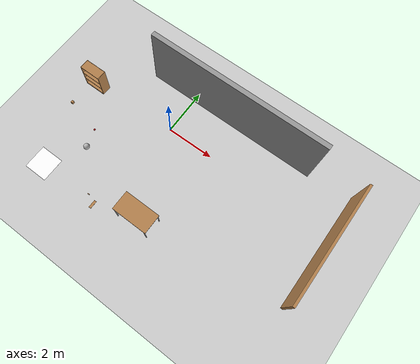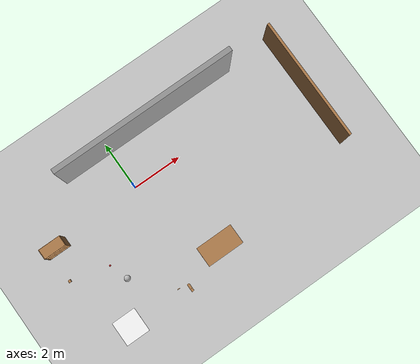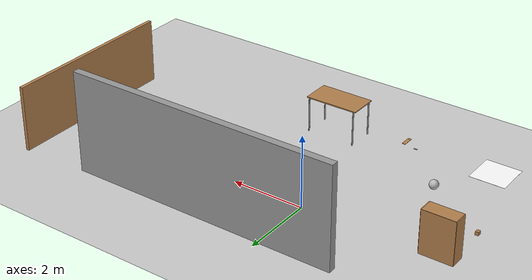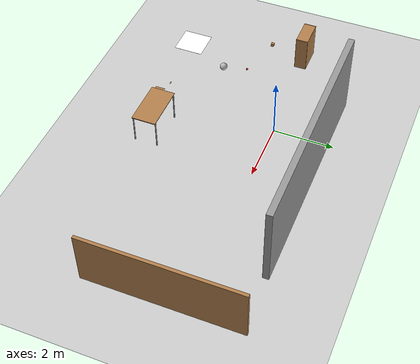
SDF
<sdf version="1.7">
 <world name="default">
  <light name="sun" type="directional">
   <pose>0 0 10 0 -0 0</pose>
   <diffuse>0.8 0.8 0.8 1</diffuse>
   <specular>0.2 0.2 0.2 1</specular>
   <attenuation>
    <range>1000</range>
    <constant>0.9</constant>
    <linear>0.01</linear>
    <quadratic>0.001</quadratic>
   </attenuation>
   <direction>-0.5 0.1 -0.9</direction>
   <spot><inner_angle>0</inner_angle><outer_angle>0</outer_angle><falloff>0</falloff></spot>
  </light>
  <model name="ground_plane">
   <static>1</static>
   <link name="link">
    <collision name="collision">
     <geometry><plane><normal>0 0 1</normal><size>100 100</size></plane></geometry>
     <surface>
      <contact><collide_bitmask>65535</collide_bitmask></contact>
      <friction><ode><mu>100</mu><mu2>50</mu2></ode></friction>
     </surface>
    </collision>
    <visual name="visual">
     <cast_shadows>0</cast_shadows>
     <geometry><plane><normal>0 0 1</normal><size>100 100</size></plane></geometry>
     <material>
      <script><uri>file://media/materials/scripts/gazebo.material</uri><name>Gazebo/Grey</name></script>
     </material>
    </visual>
   </link>
  </model>
  <gravity>0 0 -9.8</gravity>
  <magnetic_field>6e-06 2.3e-05 -4.2e-05</magnetic_field>
  <atmosphere type="adiabatic"/>
  <physics type="ode">
   <max_step_size>0.001</max_step_size>
   <real_time_factor>1</real_time_factor>
   <real_time_update_rate>1000</real_time_update_rate>
  </physics>
  <scene><ambient>0.4 0.4 0.4 1</ambient><background>0.7 0.7 0.7 1</background><shadows>1</shadows></scene>
  <audio><device>default</device></audio>
  <spherical_coordinates>
   <surface_model>EARTH_WGS84</surface_model>
   <latitude_deg>0</latitude_deg>
   <longitude_deg>0</longitude_deg>
   <elevation>0</elevation>
   <heading_deg>0</heading_deg>
  </spherical_coordinates>
  <model name="bookshelf">
   <static>1</static>
   <link name="link">
    <inertial><mass>1</mass></inertial>
    <collision name="back">
     <pose>0 0.005 0.6 0 -0 0</pose>
     <geometry><box><size>0.9 0.01 1.2</size></box></geometry>
    </collision>
    <visual name="visual1">
     <pose>0 0.005 0.6 0 -0 0</pose>
     <geometry><box><size>0.9 0.01 1.2</size></box></geometry>
     <material>
      <script><uri>file://media/materials/scripts/gazebo.material</uri><name>Gazebo/Wood</name></script>
     </material>
    </visual>
    <collision name="left_side">
     <pose>0.45 -0.195 0.6 0 -0 0</pose>
     <geometry><box><size>0.02 0.4 1.2</size></box></geometry>
    </collision>
    <visual name="visual2">
     <pose>0.45 -0.195 0.6 0 -0 0</pose>
     <geometry><box><size>0.02 0.4 1.2</size></box></geometry>
     <material>
      <script><uri>file://media/materials/scripts/gazebo.material</uri><name>Gazebo/Wood</name></script>
     </material>
    </visual>
    <collision name="right_side">
     <pose>-0.45 -0.195 0.6 0 -0 0</pose>
     <geometry><box><size>0.02 0.4 1.2</size></box></geometry>
    </collision>
    <visual name="visual3">
     <pose>-0.45 -0.195 0.6 0 -0 0</pose>
     <geometry><box><size>0.02 0.4 1.2</size></box></geometry>
     <material>
      <script><uri>file://media/materials/scripts/gazebo.material</uri><name>Gazebo/Wood</name></script>
     </material>
    </visual>
    <collision name="bottom">
     <pose>0 -0.195 0.03 0 -0 0</pose>
     <geometry><box><size>0.88 0.4 0.06</size></box></geometry>
    </collision>
    <visual name="visual4">
     <pose>0 -0.195 0.03 0 -0 0</pose>
     <geometry><box><size>0.88 0.4 0.06</size></box></geometry>
     <material>
      <script><uri>file://media/materials/scripts/gazebo.material</uri><name>Gazebo/Wood</name></script>
     </material>
    </visual>
    <collision name="top">
     <pose>0 -0.195 1.19 0 -0 0</pose>
     <geometry><box><size>0.88 0.4 0.02</size></box></geometry>
    </collision>
    <visual name="visual5">
     <pose>0 -0.195 1.19 0 -0 0</pose>
     <geometry><box><size>0.88 0.4 0.02</size></box></geometry>
     <material>
      <script><uri>file://media/materials/scripts/gazebo.material</uri><name>Gazebo/Wood</name></script>
     </material>
    </visual>
    <collision name="low_shelf">
     <pose>0 -0.195 0.43 0 -0 0</pose>
     <geometry><box><size>0.88 0.4 0.02</size></box></geometry>
    </collision>
    <visual name="visual6">
     <pose>0 -0.195 0.43 0 -0 0</pose>
     <geometry><box><size>0.88 0.4 0.02</size></box></geometry>
     <material>
      <script><uri>file://media/materials/scripts/gazebo.material</uri><name>Gazebo/Wood</name></script>
     </material>
    </visual>
    <collision name="high_shelf">
     <pose>0 -0.195 0.8 0 -0 0</pose>
     <geometry><box><size>0.88 0.4 0.02</size></box></geometry>
    </collision>
    <visual name="visual7">
     <pose>0 -0.195 0.8 0 -0 0</pose>
     <geometry><box><size>0.88 0.4 0.02</size></box></geometry>
     <material>
      <script><uri>file://media/materials/scripts/gazebo.material</uri><name>Gazebo/Wood</name></script>
     </material>
    </visual>
   </link>
   <pose>-3.67092 0.003597 0 0 -0 0</pose>
  </model>
  <model name="cricket_ball">
   <link name="link">
    <pose>0 0 0.0375 0 -0 0</pose>
    <inertial>
     <mass>0.1467</mass>
     <inertia>
      <ixx>8.25187e-05</ixx>
      <ixy>0</ixy>
      <ixz>0</ixz>
      <iyy>8.25187e-05</iyy>
      <iyz>0</iyz>
      <izz>8.25187e-05</izz>
     </inertia>
    </inertial>
    <collision name="collision">
     <geometry><sphere><radius>0.0375</radius></sphere></geometry>
     <surface>
      <contact>
       <poissons_ratio>0.347</poissons_ratio>
       <elastic_modulus>8.8e+09</elastic_modulus>
       <ode><kp>100000</kp><kd>100</kd><max_vel>100</max_vel><min_depth>0.001</min_depth></ode>
      </contact>
      <friction>
       <torsional>
        <coefficient>1</coefficient>
        <use_patch_radius>0</use_patch_radius>
        <surface_radius>0.01</surface_radius>
       </torsional>
      </friction>
     </surface>
    </collision>
    <visual name="visual">
     <geometry><sphere><radius>0.0375</radius></sphere></geometry>
     <material>
      <script><uri>file://media/materials/scripts/gazebo.material</uri><name>Gazebo/Red</name></script>
     </material>
    </visual>
    <velocity_decay><linear>0</linear><angular>0.005</angular></velocity_decay>
   </link>
   <pose>-2.43366 -1.8471 -0.001014 0 -0 0</pose>
  </model>
  <model name="frc2016_ball">
   <pose>-2.17325 -2.60747 0.127 0 -0 0</pose>
   <link name="link">
    <inertial>
     <mass>0.213</mass>
     <inertia>
      <ixx>0.00322667</ixx>
      <ixy>0</ixy>
      <ixz>0</ixz>
      <iyy>0.00322667</iyy>
      <iyz>0</iyz>
      <izz>0.00322667</izz>
     </inertia>
    </inertial>
    <visual name="visual"><geometry><sphere><radius>0.127</radius></sphere></geometry></visual>
    <collision name="collision">
     <geometry><sphere><radius>0.127</radius></sphere></geometry>
     <surface>
      <bounce><restitution_coefficient>0.15937</restitution_coefficient><threshold>0</threshold></bounce>
      <contact><ode><max_vel>100</max_vel><min_depth>0.001</min_depth></ode></contact>
     </surface>
    </collision>
   </link>
  </model>
  <model name="grey_wall">
   <static>1</static>
   <link name="link">
    <pose>0 0 1.4 0 -0 0</pose>
    <collision name="collision"><geometry><box><size>7.5 0.2 2.8</size></box></geometry></collision>
    <visual name="visual">
     <cast_shadows>0</cast_shadows>
     <geometry><box><size>7.5 0.2 2.8</size></box></geometry>
     <material>
      <script>
       <uri>model://grey_wall/materials/scripts</uri>
       <uri>model://grey_wall/materials/textures</uri>
       <name>vrc/grey_wall</name>
      </script>
     </material>
    </visual>
   </link>
   <pose>1.74238 1.71792 0 0 -0 0</pose>
  </model>
  <model name="table">
   <static>1</static>
   <link name="link">
    <collision name="surface">
     <pose>0 0 1 0 -0 0</pose>
     <geometry><box><size>1.5 0.8 0.03</size></box></geometry>
     <surface><friction><ode><mu>0.6</mu><mu2>0.6</mu2></ode></friction></surface>
    </collision>
    <visual name="visual1">
     <pose>0 0 1 0 -0 0</pose>
     <geometry><box><size>1.5 0.8 0.03</size></box></geometry>
     <material>
      <script><uri>file://media/materials/scripts/gazebo.material</uri><name>Gazebo/Wood</name></script>
     </material>
    </visual>
    <collision name="front_left_leg">
     <pose>0.68 0.38 0.5 0 -0 0</pose>
     <geometry><cylinder><radius>0.02</radius><length>1</length></cylinder></geometry>
    </collision>
    <visual name="front_left_leg">
     <pose>0.68 0.38 0.5 0 -0 0</pose>
     <geometry><cylinder><radius>0.02</radius><length>1</length></cylinder></geometry>
     <material>
      <script><uri>file://media/materials/scripts/gazebo.material</uri><name>Gazebo/Grey</name></script>
     </material>
    </visual>
    <collision name="front_right_leg">
     <pose>0.68 -0.38 0.5 0 -0 0</pose>
     <geometry><cylinder><radius>0.02</radius><length>1</length></cylinder></geometry>
    </collision>
    <visual name="front_right_leg">
     <pose>0.68 -0.38 0.5 0 -0 0</pose>
     <geometry><cylinder><radius>0.02</radius><length>1</length></cylinder></geometry>
     <material>
      <script><uri>file://media/materials/scripts/gazebo.material</uri><name>Gazebo/Grey</name></script>
     </material>
    </visual>
    <collision name="back_right_leg">
     <pose>-0.68 -0.38 0.5 0 -0 0</pose>
     <geometry><cylinder><radius>0.02</radius><length>1</length></cylinder></geometry>
    </collision>
    <visual name="back_right_leg">
     <pose>-0.68 -0.38 0.5 0 -0 0</pose>
     <geometry><cylinder><radius>0.02</radius><length>1</length></cylinder></geometry>
     <material>
      <script><uri>file://media/materials/scripts/gazebo.material</uri><name>Gazebo/Grey</name></script>
     </material>
    </visual>
    <collision name="back_left_leg">
     <pose>-0.68 0.38 0.5 0 -0 0</pose>
     <geometry><cylinder><radius>0.02</radius><length>1</length></cylinder></geometry>
    </collision>
    <visual name="back_left_leg">
     <pose>-0.68 0.38 0.5 0 -0 0</pose>
     <geometry><cylinder><radius>0.02</radius><length>1</length></cylinder></geometry>
     <material>
      <script><uri>file://media/materials/scripts/gazebo.material</uri><name>Gazebo/Grey</name></script>
     </material>
    </visual>
   </link>
   <pose>1.28554 -3.61302 0 0 -0 0</pose>
  </model>
  <model name="wood_cube_10cm">
   <link name="link">
    <pose>0 0 0.05 0 -0 0</pose>
    <inertial>
     <mass>0.5167</mass>
     <inertia>
      <ixx>0.000861167</ixx>
      <ixy>0</ixy>
      <ixz>0</ixz>
      <iyy>0.000861167</iyy>
      <iyz>0</iyz>
      <izz>0.000861167</izz>
     </inertia>
    </inertial>
    <collision name="collision">
     <geometry><box><size>0.1 0.1 0.1</size></box></geometry>
     <surface>
      <contact>
       <poissons_ratio>0.347</poissons_ratio>
       <elastic_modulus>8.8e+09</elastic_modulus>
       <ode><kp>100000</kp><kd>100</kd><max_vel>100</max_vel><min_depth>0.001</min_depth></ode>
      </contact>
      <friction>
       <torsional>
        <coefficient>1</coefficient>
        <use_patch_radius>0</use_patch_radius>
        <surface_radius>0.01</surface_radius>
       </torsional>
      </friction>
     </surface>
    </collision>
    <visual name="visual">
     <geometry><box><size>0.1 0.1 0.1</size></box></geometry>
     <material>
      <script><uri>file://media/materials/scripts/gazebo.material</uri><name>Gazebo/Wood</name></script>
     </material>
    </visual>
   </link>
   <pose>-3.97938 -1.45766 -0.001013 0 -0 0</pose>
  </model>
  <model name="wood_block_10_2_1cm">
   <link name="link">
    <pose>0 0 0.005 0 -0 0</pose>
    <inertial>
     <mass>0.0125</mass>
     <inertia>
      <ixx>7.55208e-07</ixx>
      <ixy>0</ixy>
      <ixz>0</ixz>
      <iyy>1.05208e-05</iyy>
      <iyz>0</iyz>
      <izz>1.10677e-05</izz>
     </inertia>
    </inertial>
    <collision name="collision">
     <geometry><box><size>0.1 0.025 0.01</size></box></geometry>
     <surface>
      <contact>
       <poissons_ratio>0.347</poissons_ratio>
       <elastic_modulus>8.8e+09</elastic_modulus>
       <ode><kp>100000</kp><kd>1</kd><max_vel>1</max_vel><min_depth>0.001</min_depth></ode>
      </contact>
      <friction>
       <torsional>
        <coefficient>1</coefficient>
        <use_patch_radius>0</use_patch_radius>
        <surface_radius>0.05</surface_radius>
       </torsional>
      </friction>
     </surface>
    </collision>
    <visual name="visual">
     <geometry><box><size>0.1 0.025 0.01</size></box></geometry>
     <material>
      <script><uri>file://media/materials/scripts/gazebo.material</uri><name>Gazebo/Wood</name></script>
     </material>
    </visual>
   </link>
   <pose>-0.849513 -4.02965 -0.000901 2.4e-05 -6e-06 0</pose>
  </model>
  <model name="wooden_board">
   <link name="base">
    <pose>0 0 0.00523 0 -0 0</pose>
    <inertial>
     <mass>0.2765</mass>
     <inertia>
      <ixx>0.0025148</ixx>
      <ixy>0</ixy>
      <ixz>0</ixz>
      <iyy>0.00024037</iyy>
      <iyz>0</iyz>
      <izz>0.00275013</izz>
     </inertia>
    </inertial>
    <collision name="collision">
     <geometry><box><size>0.1016 0.3302 0.01046</size></box></geometry>
     <surface>
      <contact>
       <poissons_ratio>0.347</poissons_ratio>
       <elastic_modulus>8.8e+09</elastic_modulus>
       <ode><kp>100000</kp><kd>100</kd><max_vel>100</max_vel><min_depth>0.001</min_depth></ode>
      </contact>
      <friction>
       <torsional>
        <coefficient>1</coefficient>
        <use_patch_radius>0</use_patch_radius>
        <surface_radius>0.01</surface_radius>
       </torsional>
      </friction>
     </surface>
    </collision>
    <visual name="visual">
     <geometry><box><size>0.1016 0.3302 0.01046</size></box></geometry>
     <material>
      <script><uri>file://media/materials/scripts/gazebo.material</uri><name>Gazebo/Wood</name></script>
     </material>
    </visual>
    <visual name="tee_nut_1">
     <pose>0 -0.116 0 0 -0 0</pose>
     <geometry><cylinder><radius>0.00635</radius><length>0.0105646</length></cylinder></geometry>
     <material>
      <script><uri>file://media/materials/scripts/gazebo.material</uri><name>Gazebo/Grey</name></script>
     </material>
    </visual>
    <visual name="tee_nut_2">
     <pose>0 -0.038 0 0 -0 0</pose>
     <geometry><cylinder><radius>0.00635</radius><length>0.0105646</length></cylinder></geometry>
     <material>
      <script><uri>file://media/materials/scripts/gazebo.material</uri><name>Gazebo/Grey</name></script>
     </material>
    </visual>
    <visual name="tee_nut_3">
     <pose>0 0.038 0 0 -0 0</pose>
     <geometry><cylinder><radius>0.00635</radius><length>0.0105646</length></cylinder></geometry>
     <material>
      <script><uri>file://media/materials/scripts/gazebo.material</uri><name>Gazebo/Grey</name></script>
     </material>
    </visual>
    <visual name="tee_nut_4">
     <pose>0 0.116 0 0 -0 0</pose>
     <geometry><cylinder><radius>0.00635</radius><length>0.0105646</length></cylinder></geometry>
     <material>
      <script><uri>file://media/materials/scripts/gazebo.material</uri><name>Gazebo/Grey</name></script>
     </material>
    </visual>
   </link>
   <pose>-0.458882 -4.24471 -0.001007 0 -0 0</pose>
  </model>
  <model name="fence">
   <static>1</static>
   <link name="link">
    <pose>0 0 0.915 0 -0 0</pose>
    <collision name="collision"><geometry><box><size>0.1 5 1.83</size></box></geometry></collision>
    <visual name="visual">
     <cast_shadows>0</cast_shadows>
     <geometry><box><size>0.1 5 1.83</size></box></geometry>
     <material>
      <script>
       <uri>https://fuel.ignitionrobotics.org/1.0/athackst/models/fence/2/files/materials/scripts</uri>
       <uri>https://fuel.ignitionrobotics.org/1.0/athackst/models/fence/2/files/materials/textures</uri>
       <name>Fence/WoodBoarding</name>
      </script>
     </material>
    </visual>
   </link>
   <pose>7.33753 -0.607238 0 0 -0 0</pose>
  </model>
  <model name="arucotag">
   <static>1</static>
   <pose>-3.09674 -4.14148 0.001 0 -0 0</pose>
   <link name="base">
    <visual name="base_visual">
     <geometry><plane><normal>0 0 1</normal><size>1 1</size></plane></geometry>
     <material>
      <diffuse>1 1 1 1</diffuse>
      <specular>0.4 0.4 0.4 1</specular>
      <pbr>
       <metal>
        <albedo_map>https://fuel.ignitionrobotics.org/1.0/yueqianliu/models/aruco tags in tag/2/files/aruco.png</albedo_map>
       </metal>
      </pbr>
     </material>
    </visual>
   </link>
  </model>
 </world>
</sdf>
